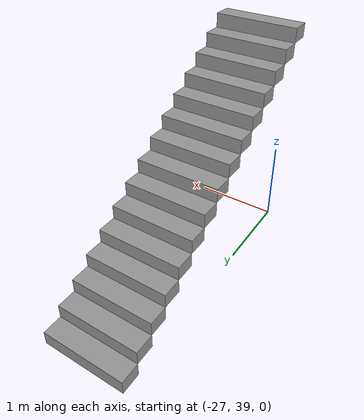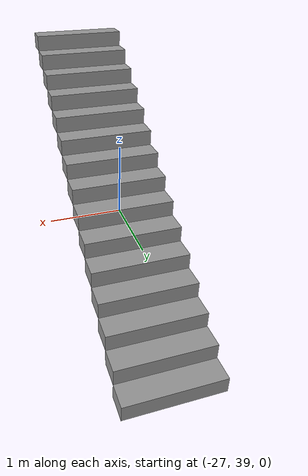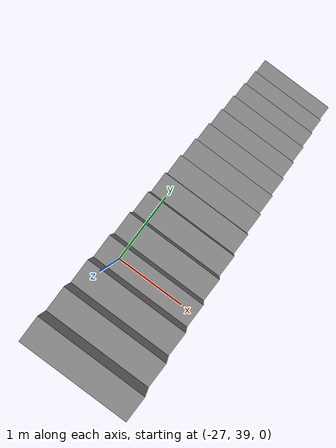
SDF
<sdf version="1.7">
 <model name="testx">
  <pose>-9.53854 -0.188873 0 0 -0 0</pose>
  <link name="Stairs_3">
   <visual name="Stairs_3_Visual_0">
    <pose>-16.9802 42.2224 0.083333 0 -0 0</pose>
    <geometry><box><size>1 0.233333 0.166667</size></box></geometry>
    <material>
     <script><uri>file://media/materials/scripts/gazebo.material</uri><name>Gazebo/Grey</name></script>
     <ambient>1 1 1 1</ambient>
    </material>
    <meta><layer>0</layer></meta>
   </visual>
   <collision name="Stairs_3_Collision_0">
    <geometry><box><size>1 0.233333 0.166667</size></box></geometry>
    <pose>-16.9802 42.2224 0.083333 0 -0 0</pose>
   </collision>
   <visual name="Stairs_3_Visual_1">
    <pose>-16.9802 41.9891 0.25 0 -0 0</pose>
    <geometry><box><size>1 0.233333 0.166667</size></box></geometry>
    <material>
     <script><uri>file://media/materials/scripts/gazebo.material</uri><name>Gazebo/Grey</name></script>
     <ambient>1 1 1 1</ambient>
    </material>
    <meta><layer>0</layer></meta>
   </visual>
   <collision name="Stairs_3_Collision_1">
    <geometry><box><size>1 0.233333 0.166667</size></box></geometry>
    <pose>-16.9802 41.9891 0.25 0 -0 0</pose>
   </collision>
   <visual name="Stairs_3_Visual_2">
    <pose>-16.9802 41.7557 0.416667 0 -0 0</pose>
    <geometry><box><size>1 0.233333 0.166667</size></box></geometry>
    <material>
     <script><uri>file://media/materials/scripts/gazebo.material</uri><name>Gazebo/Grey</name></script>
     <ambient>1 1 1 1</ambient>
    </material>
    <meta><layer>0</layer></meta>
   </visual>
   <collision name="Stairs_3_Collision_2">
    <geometry><box><size>1 0.233333 0.166667</size></box></geometry>
    <pose>-16.9802 41.7557 0.416667 0 -0 0</pose>
   </collision>
   <visual name="Stairs_3_Visual_3">
    <pose>-16.9802 41.5224 0.583333 0 -0 0</pose>
    <geometry><box><size>1 0.233333 0.166667</size></box></geometry>
    <material>
     <script><uri>file://media/materials/scripts/gazebo.material</uri><name>Gazebo/Grey</name></script>
     <ambient>1 1 1 1</ambient>
    </material>
    <meta><layer>0</layer></meta>
   </visual>
   <collision name="Stairs_3_Collision_3">
    <geometry><box><size>1 0.233333 0.166667</size></box></geometry>
    <pose>-16.9802 41.5224 0.583333 0 -0 0</pose>
   </collision>
   <visual name="Stairs_3_Visual_4">
    <pose>-16.9802 41.2891 0.75 0 -0 0</pose>
    <geometry><box><size>1 0.233333 0.166667</size></box></geometry>
    <material>
     <script><uri>file://media/materials/scripts/gazebo.material</uri><name>Gazebo/Grey</name></script>
     <ambient>1 1 1 1</ambient>
    </material>
    <meta><layer>0</layer></meta>
   </visual>
   <collision name="Stairs_3_Collision_4">
    <geometry><box><size>1 0.233333 0.166667</size></box></geometry>
    <pose>-16.9802 41.2891 0.75 0 -0 0</pose>
   </collision>
   <visual name="Stairs_3_Visual_5">
    <pose>-16.9802 41.0557 0.916667 0 -0 0</pose>
    <geometry><box><size>1 0.233333 0.166667</size></box></geometry>
    <material>
     <script><uri>file://media/materials/scripts/gazebo.material</uri><name>Gazebo/Grey</name></script>
     <ambient>1 1 1 1</ambient>
    </material>
    <meta><layer>0</layer></meta>
   </visual>
   <collision name="Stairs_3_Collision_5">
    <geometry><box><size>1 0.233333 0.166667</size></box></geometry>
    <pose>-16.9802 41.0557 0.916667 0 -0 0</pose>
   </collision>
   <visual name="Stairs_3_Visual_6">
    <pose>-16.9802 40.8224 1.08333 0 -0 0</pose>
    <geometry><box><size>1 0.233333 0.166667</size></box></geometry>
    <material>
     <script><uri>file://media/materials/scripts/gazebo.material</uri><name>Gazebo/Grey</name></script>
     <ambient>1 1 1 1</ambient>
    </material>
    <meta><layer>0</layer></meta>
   </visual>
   <collision name="Stairs_3_Collision_6">
    <geometry><box><size>1 0.233333 0.166667</size></box></geometry>
    <pose>-16.9802 40.8224 1.08333 0 -0 0</pose>
   </collision>
   <visual name="Stairs_3_Visual_7">
    <pose>-16.9802 40.5891 1.25 0 -0 0</pose>
    <geometry><box><size>1 0.233333 0.166667</size></box></geometry>
    <material>
     <script><uri>file://media/materials/scripts/gazebo.material</uri><name>Gazebo/Grey</name></script>
     <ambient>1 1 1 1</ambient>
    </material>
    <meta><layer>0</layer></meta>
   </visual>
   <collision name="Stairs_3_Collision_7">
    <geometry><box><size>1 0.233333 0.166667</size></box></geometry>
    <pose>-16.9802 40.5891 1.25 0 -0 0</pose>
   </collision>
   <visual name="Stairs_3_Visual_8">
    <pose>-16.9802 40.3557 1.41667 0 -0 0</pose>
    <geometry><box><size>1 0.233333 0.166667</size></box></geometry>
    <material>
     <script><uri>file://media/materials/scripts/gazebo.material</uri><name>Gazebo/Grey</name></script>
     <ambient>1 1 1 1</ambient>
    </material>
    <meta><layer>0</layer></meta>
   </visual>
   <collision name="Stairs_3_Collision_8">
    <geometry><box><size>1 0.233333 0.166667</size></box></geometry>
    <pose>-16.9802 40.3557 1.41667 0 -0 0</pose>
   </collision>
   <visual name="Stairs_3_Visual_9">
    <pose>-16.9802 40.1224 1.58333 0 -0 0</pose>
    <geometry><box><size>1 0.233333 0.166667</size></box></geometry>
    <material>
     <script><uri>file://media/materials/scripts/gazebo.material</uri><name>Gazebo/Grey</name></script>
     <ambient>1 1 1 1</ambient>
    </material>
    <meta><layer>0</layer></meta>
   </visual>
   <collision name="Stairs_3_Collision_9">
    <geometry><box><size>1 0.233333 0.166667</size></box></geometry>
    <pose>-16.9802 40.1224 1.58333 0 -0 0</pose>
   </collision>
   <visual name="Stairs_3_Visual_10">
    <pose>-16.9802 39.8891 1.75 0 -0 0</pose>
    <geometry><box><size>1 0.233333 0.166667</size></box></geometry>
    <material>
     <script><uri>file://media/materials/scripts/gazebo.material</uri><name>Gazebo/Grey</name></script>
     <ambient>1 1 1 1</ambient>
    </material>
    <meta><layer>0</layer></meta>
   </visual>
   <collision name="Stairs_3_Collision_10">
    <geometry><box><size>1 0.233333 0.166667</size></box></geometry>
    <pose>-16.9802 39.8891 1.75 0 -0 0</pose>
   </collision>
   <visual name="Stairs_3_Visual_11">
    <pose>-16.9802 39.6557 1.91667 0 -0 0</pose>
    <geometry><box><size>1 0.233333 0.166667</size></box></geometry>
    <material>
     <script><uri>file://media/materials/scripts/gazebo.material</uri><name>Gazebo/Grey</name></script>
     <ambient>1 1 1 1</ambient>
    </material>
    <meta><layer>0</layer></meta>
   </visual>
   <collision name="Stairs_3_Collision_11">
    <geometry><box><size>1 0.233333 0.166667</size></box></geometry>
    <pose>-16.9802 39.6557 1.91667 0 -0 0</pose>
   </collision>
   <visual name="Stairs_3_Visual_12">
    <pose>-16.9802 39.4224 2.08333 0 -0 0</pose>
    <geometry><box><size>1 0.233333 0.166667</size></box></geometry>
    <material>
     <script><uri>file://media/materials/scripts/gazebo.material</uri><name>Gazebo/Grey</name></script>
     <ambient>1 1 1 1</ambient>
    </material>
    <meta><layer>0</layer></meta>
   </visual>
   <collision name="Stairs_3_Collision_12">
    <geometry><box><size>1 0.233333 0.166667</size></box></geometry>
    <pose>-16.9802 39.4224 2.08333 0 -0 0</pose>
   </collision>
   <visual name="Stairs_3_Visual_13">
    <pose>-16.9802 39.1891 2.25 0 -0 0</pose>
    <geometry><box><size>1 0.233333 0.166667</size></box></geometry>
    <material>
     <script><uri>file://media/materials/scripts/gazebo.material</uri><name>Gazebo/Grey</name></script>
     <ambient>1 1 1 1</ambient>
    </material>
    <meta><layer>0</layer></meta>
   </visual>
   <collision name="Stairs_3_Collision_13">
    <geometry><box><size>1 0.233333 0.166667</size></box></geometry>
    <pose>-16.9802 39.1891 2.25 0 -0 0</pose>
   </collision>
   <visual name="Stairs_3_Visual_14">
    <pose>-16.9802 38.9557 2.41667 0 -0 0</pose>
    <geometry><box><size>1 0.233333 0.166667</size></box></geometry>
    <material>
     <script><uri>file://media/materials/scripts/gazebo.material</uri><name>Gazebo/Grey</name></script>
     <ambient>1 1 1 1</ambient>
    </material>
    <meta><layer>0</layer></meta>
   </visual>
   <collision name="Stairs_3_Collision_14">
    <geometry><box><size>1 0.233333 0.166667</size></box></geometry>
    <pose>-16.9802 38.9557 2.41667 0 -0 0</pose>
   </collision>
  </link>
  <static>1</static>
 </model>
</sdf>
